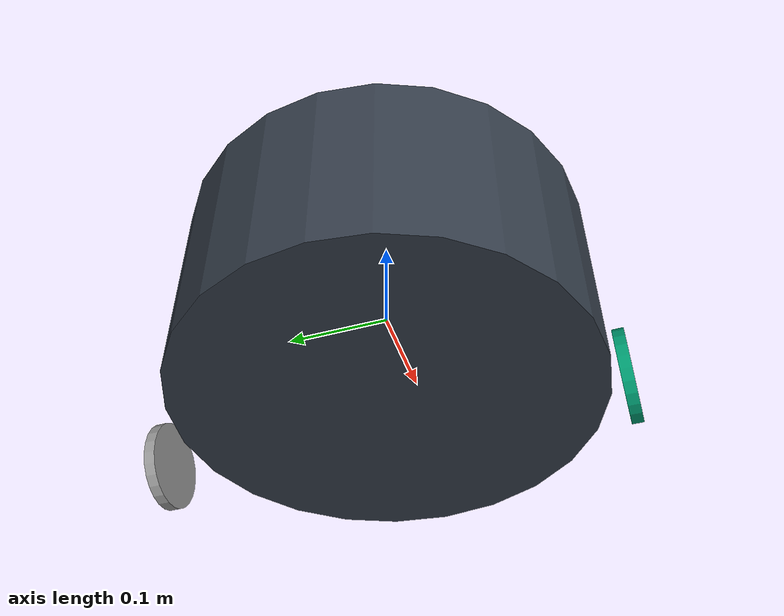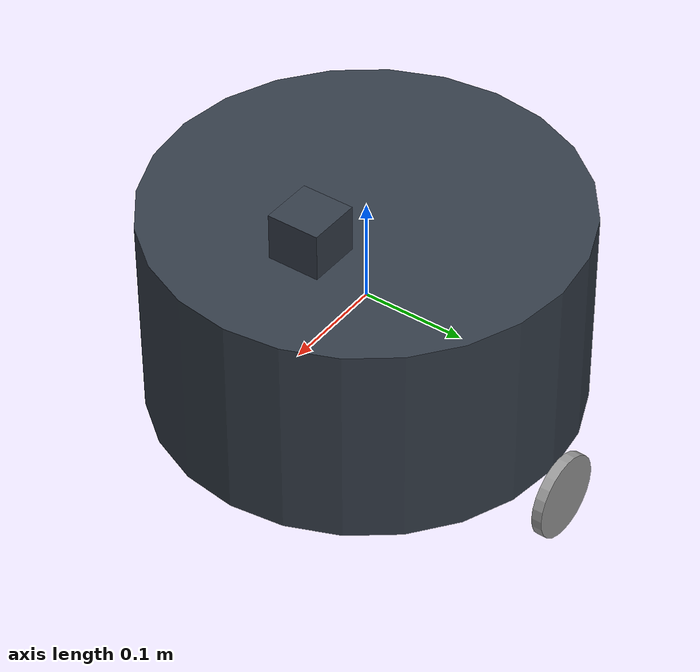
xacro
<?xml version="1.0"?>
<robot name="vacumm_robot" xmlns:xacro="https://www.ros.org/wiki/xacro" >

  <material name="black">
    <color rgba="0.0 0.0 0.0 1.0"/>
  </material>
  <material name="blue">
    <color rgba="0.203125 0.23828125 0.28515625 1.0"/>
  </material>
  <material name="green">
    <color rgba="0.0 0.8 0.0 1.0"/>
  </material>
  <material name="grey">
    <color rgba="0.2 0.2 0.2 1.0"/>
  </material>
  <material name="orange">
    <color rgba="1.0 0.423529411765 0.0392156862745 1.0"/>
  </material>
  <material name="brown">
    <color rgba="0.870588235294 0.811764705882 0.764705882353 1.0"/>
  </material>
  <material name="red">
    <color rgba="0.80078125 0.12890625 0.1328125 1.0"/>
  </material>
  <material name="white">
    <color rgba="1.0 1.0 1.0 1.0"/>
  </material>

  <gazebo reference="base_link">
        <material>Gazebo/White</material>
        <turnGravityOff>false</turnGravityOff>
    </gazebo>
    <gazebo reference="left_Wheel_link">
        <mu1 value="1.0"/>
        <mu2 value="1.0"/>
        <kp value="600000"/>
        <kd value="3"/>
        <fdir1 value="1 0 0"/>
        <material>Gazebo/Grey</material>
        <turnGravityOff>false</turnGravityOff>
    </gazebo>
    <gazebo reference="right_wheel_link">
        <mu1 value="1.0"/>
        <mu2 value="1.0"/>
        <kp value="600000"/>
        <kd value="3"/>
        <fdir1 value="1 0 0"/>
        <material>Gazebo/Grey</material>
        <turnGravityOff>false</turnGravityOff>
    </gazebo>

    <gazebo>
        <plugin name="gazebo_ros_control" filename="libgazebo_ros_control.so">
            <legacyMode>false</legacyMode>

        </plugin>
    </gazebo>

  <link name="base_link">
    <!-- pose and inertial -->
    <pose>0 0 0.1 0 0 0</pose>

    <inertial>
      <mass value="2"/>
      <origin rpy="0 0 0" xyz="0 0 0"/>
      <inertia ixx="0.026667" ixy="0" ixz="0" iyy="0.026667" iyz="0" izz="0.04"/>
    </inertial>

    <collision name="collision_chassis">
      <geometry>
        <cylinder radius="0.2" length="0.2"/>
      </geometry>
    </collision>

    <visual name="chassis">
      <origin rpy="0 0 0" xyz="0 0 0"/>
      <geometry>
        <cylinder radius="0.2" length="0.2"/>
      </geometry>
      <material name="blue"/>
    </visual>

    <visual name="kinect">
      <origin rpy="0 0 0" xyz="0.08 0 0.12"/>
      <geometry>
        <box size="0.05 0.05 0.05"/>
      </geometry>
      <material name="blue"/>
    </visual>

    <!-- caster front -->
    <collision name="caster_front_collision">
      <origin rpy=" 0 0 0" xyz="0.18 0 -0.143"/>
      <geometry>
        <sphere radius="0.02"/>
      </geometry>
      <surface>
        <friction>
          <ode>
            <mu>0</mu>
            <mu2>0</mu2>
            <slip1>1.0</slip1>
            <slip2>1.0</slip2>
          </ode>
        </friction>
      </surface>
    </collision>

    <!-- caster front -->
    <collision name="caster_back_collision">
      <origin rpy=" 0 0 0" xyz="-0.18 0 -0.143"/>
      <geometry>
        <sphere radius="0.02"/>
      </geometry>
      <surface>
        <friction>
          <ode>5
            <mu>0</mu>
            <mu2>0</mu2>
            <slip1>1.0</slip1>
            <slip2>1.0</slip2>
          </ode>
        </friction>
      </surface>
    </collision>

    </link>

  <!-- Create wheel right -->

  <link name="right_wheel_link">
    <inertial>
      <mass value="0.2"/>
      <origin rpy="0 1.5707 1.5707" xyz="0 0 0"/>
      <inertia ixx="0.00052666666" ixy="0" ixz="0" iyy="0.00052666666" iyz="0" izz="0.001"/>
    </inertial>

    <collision name="link_right_wheel_collision">
      <origin rpy="0 1.5707 1.5707" xyz="0 0 0" />
      <geometry>
        <cylinder length="0.01" radius="0.04"/>
      </geometry>
    </collision>

    <visual name="link_right_wheel_visual">
      <origin rpy="0 1.5707 1.5707" xyz="0 0 0"/>
      <geometry>
        <cylinder length="0.01" radius="0.04"/>
      </geometry>
    </visual>

  </link>

  <!--   Joint for right wheel  -->
  <joint name="right_wheel_joint" type="continuous">
    <origin rpy="0 0 0" xyz="0 0.21 -0.125"/>
    <child link="right_wheel_link" />
    <parent link="base_link"/>
    <axis rpy="0 0 0" xyz="0 1 0"/>
    <limit effort="10000" velocity="1000"/>
    <joint_properties damping="1.0" friction="1.0" />
  </joint>

  <!-- Left Wheel link -->

  <link name="left_wheel_link">
    <inertial>
      <mass value="0.2"/>
      <origin rpy="0 1.5707 1.5707" xyz="0 0 0"/>
      <inertia ixx="0.00052666666" ixy="0" ixz="0" iyy="0.00052666666" iyz="0" izz="0.001"/>
    </inertial>

    <collision name="link_left_wheel_collision">
      <origin rpy="0 1.5707 1.5707" xyz="0 0 0" />
      <geometry>
       <cylinder length="0.01" radius="0.04"/>
      </geometry>
    </collision>

    <visual name="link_left_wheel_visual">
      <origin rpy="0 1.5707 1.5707" xyz="0 0 0"/>
      <geometry>
        <cylinder length="0.01" radius="0.04"/>
      </geometry>
    </visual>

  </link>

  <!--   Joint for right wheel  -->
  <joint name="left_wheel_joint" type="continuous">
    <origin rpy="0 0 0" xyz="0 -0.21 -0.125"/>
    <child link="left_wheel_link" />
    <parent link="base_link"/>
    <axis rpy="0 0 0" xyz="0 1 0"/>
    <limit effort="10000" velocity="1000"/>
    <joint_properties damping="1.0" friction="1.0" />
  </joint>

  <transmission name="left_wheel_joint_trans" type="SimpleTransmission">
        <type>transmission_interface/SimpleTransmission</type>
        <joint name="left_wheel_joint">
            <hardwareInterface>hardware_interface/VelocityJointInterface</hardwareInterface>
        </joint>
        <actuator name="left_wheel_joint_motor">
            <hardwareInterface>hardware_interface/VelocityJointInterface</hardwareInterface>
            <mechanicalReduction>1</mechanicalReduction>
        </actuator>
    </transmission>

    <transmission name="right_wheel_joint_trans" type="SimpleTransmission">
        <type>transmission_interface/SimpleTransmission</type>
        <joint name="right_wheel_joint">
            <hardwareInterface>hardware_interface/VelocityJointInterface</hardwareInterface>
        </joint>
        <actuator name="right_wheel_joint_motor">
            <hardwareInterface>hardware_interface/VelocityJointInterface</hardwareInterface>
            <mechanicalReduction>1</mechanicalReduction>
        </actuator>
    </transmission>
</robot>
